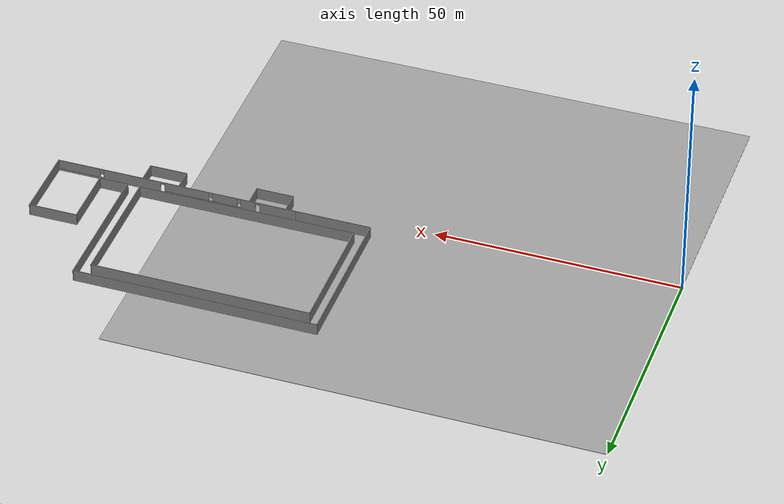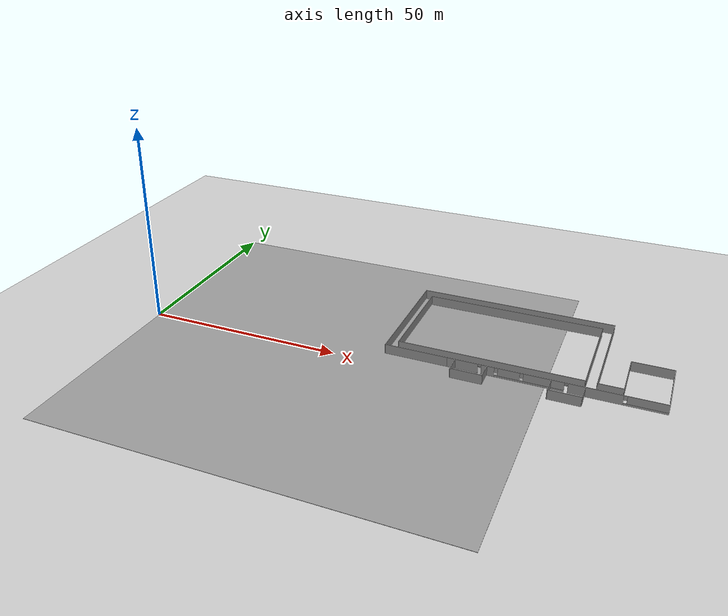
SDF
<sdf version="1.6">
 <world name="default">
  <model name="ground_plane">
   <static>1</static>
   <link name="link">
    <collision name="collision">
     <geometry><plane><normal>0 0 1</normal><size>100 100</size></plane></geometry>
     <surface>
      <contact><collide_bitmask>65535</collide_bitmask></contact>
      <friction><ode><mu>100</mu><mu2>50</mu2></ode></friction>
     </surface>
    </collision>
    <visual name="visual">
     <cast_shadows>0</cast_shadows>
     <geometry><plane><normal>0 0 1</normal><size>100 100</size></plane></geometry>
     <material>
      <script><uri>file://media/materials/scripts/gazebo.material</uri><name>Gazebo/Grey</name></script>
     </material>
    </visual>
   </link>
  </model>
  <model name="ground_plane_0">
   <static>1</static>
   <link name="link">
    <collision name="collision">
     <geometry><plane><normal>0 0 1</normal><size>100 100</size></plane></geometry>
     <surface>
      <contact><collide_bitmask>65535</collide_bitmask></contact>
      <friction><ode><mu>100</mu><mu2>50</mu2></ode></friction>
     </surface>
    </collision>
    <visual name="visual">
     <cast_shadows>0</cast_shadows>
     <geometry><plane><normal>0 0 1</normal><size>100 100</size></plane></geometry>
     <material>
      <script><uri>file://media/materials/scripts/gazebo.material</uri><name>Gazebo/Grey</name></script>
     </material>
    </visual>
   </link>
   <pose>50.0335 0.140293 0 0 -0 0</pose>
  </model>
  <model name="my_worlds_clone_1">
   <link name="myworld::myworld::Wall_0">
    <pose>7.725 -15.35 0 0 -0 0</pose>
    <visual name="Wall_0_Visual_6">
     <pose>-2.17588 0 1.5 0 -0 0</pose>
     <geometry><box><size>9.2769 0.15 2</size></box></geometry>
     <material>
      <script><uri>file://media/materials/scripts/gazebo.material</uri><name>Gazebo/Grey</name></script>
      <ambient>1 1 1 1</ambient>
      <shader type="pixel"/>
     </material>
     <meta><layer>0</layer></meta>
    </visual>
    <visual name="Wall_0_Visual_0">
     <pose>-21.2249 0 1.25 0 -0 0</pose>
     <geometry><box><size>7.55013 0.15 2.5</size></box></geometry>
     <material>
      <script><uri>file://media/materials/scripts/gazebo.material</uri><name>Gazebo/Grey</name></script>
      <ambient>1 1 1 1</ambient>
      <shader type="pixel"/>
     </material>
     <meta><layer>0</layer></meta>
    </visual>
    <visual name="Wall_0_Visual_14">
     <pose>2.86257 0 2.25 0 -0 0</pose>
     <geometry><box><size>0.8 0.15 0.5</size></box></geometry>
     <material>
      <script><uri>file://media/materials/scripts/gazebo.material</uri><name>Gazebo/Grey</name></script>
      <ambient>1 1 1 1</ambient>
      <shader type="pixel"/>
     </material>
     <meta><layer>0</layer></meta>
    </visual>
    <visual name="Wall_0_Visual_8">
     <pose>20.5547 0 1.5 0 -0 0</pose>
     <geometry><box><size>8.89059 0.15 2</size></box></geometry>
     <material>
      <script><uri>file://media/materials/scripts/gazebo.material</uri><name>Gazebo/Grey</name></script>
      <ambient>1 1 1 1</ambient>
      <shader type="pixel"/>
     </material>
     <meta><layer>0</layer></meta>
    </visual>
    <visual name="Wall_0_Visual_2">
     <pose>9.28599 0 1.25 0 -0 0</pose>
     <geometry><box><size>12.0468 0.15 2.5</size></box></geometry>
     <material>
      <script><uri>file://media/materials/scripts/gazebo.material</uri><name>Gazebo/Grey</name></script>
      <ambient>1 1 1 1</ambient>
      <shader type="pixel"/>
     </material>
     <meta><layer>0</layer></meta>
    </visual>
    <visual name="Wall_0_Visual_1">
     <pose>-15.1089 0 1.25 0 -0 0</pose>
     <geometry><box><size>3.08192 0.15 2.5</size></box></geometry>
     <material>
      <script><uri>file://media/materials/scripts/gazebo.material</uri><name>Gazebo/Grey</name></script>
      <ambient>1 1 1 1</ambient>
      <shader type="pixel"/>
     </material>
     <meta><layer>0</layer></meta>
    </visual>
    <visual name="Wall_0_Visual_3">
     <pose>-5.55269 0 0.25 0 -0 0</pose>
     <geometry><box><size>16.0305 0.15 0.5</size></box></geometry>
     <material>
      <script><uri>file://media/materials/scripts/gazebo.material</uri><name>Gazebo/Grey</name></script>
      <ambient>1 1 1 1</ambient>
      <shader type="pixel"/>
     </material>
     <meta><layer>0</layer></meta>
    </visual>
    <visual name="Wall_0_Visual_5">
     <pose>-10.1911 0 1.5 0 -0 0</pose>
     <geometry><box><size>5.15362 0.15 2</size></box></geometry>
     <material>
      <script><uri>file://media/materials/scripts/gazebo.material</uri><name>Gazebo/Grey</name></script>
      <ambient>1 1 1 1</ambient>
      <shader type="pixel"/>
     </material>
     <meta><layer>0</layer></meta>
    </visual>
    <visual name="Wall_0_Visual_13">
     <pose>2.86257 0 2.25 0 -0 0</pose>
     <geometry><box><size>0.8 0.15 0.5</size></box></geometry>
     <material>
      <script><uri>file://media/materials/scripts/gazebo.material</uri><name>Gazebo/Grey</name></script>
      <ambient>1 1 1 1</ambient>
      <shader type="pixel"/>
     </material>
     <meta><layer>0</layer></meta>
    </visual>
    <visual name="Wall_0_Visual_4">
     <pose>20.1547 0 0.25 0 -0 0</pose>
     <geometry><box><size>9.69059 0.15 0.5</size></box></geometry>
     <material>
      <script><uri>file://media/materials/scripts/gazebo.material</uri><name>Gazebo/Grey</name></script>
      <ambient>1 1 1 1</ambient>
      <shader type="pixel"/>
     </material>
     <meta><layer>0</layer></meta>
    </visual>
    <visual name="Wall_0_Visual_9">
     <pose>-13.1679 0 1.9 0 -0 0</pose>
     <geometry><box><size>0.8 0.15 1.2</size></box></geometry>
     <material>
      <script><uri>file://media/materials/scripts/gazebo.material</uri><name>Gazebo/Grey</name></script>
      <ambient>1 1 1 1</ambient>
      <shader type="pixel"/>
     </material>
     <meta><layer>0</layer></meta>
    </visual>
    <visual name="Wall_0_Visual_10">
     <pose>15.7094 0 1.9 0 -0 0</pose>
     <geometry><box><size>0.8 0.15 1.2</size></box></geometry>
     <material>
      <script><uri>file://media/materials/scripts/gazebo.material</uri><name>Gazebo/Grey</name></script>
      <ambient>1 1 1 1</ambient>
      <shader type="pixel"/>
     </material>
     <meta><layer>0</layer></meta>
    </visual>
    <visual name="Wall_0_Visual_11">
     <pose>-7.21433 0 1.9 0 -0 0</pose>
     <geometry><box><size>0.8 0.15 1.2</size></box></geometry>
     <material>
      <script><uri>file://media/materials/scripts/gazebo.material</uri><name>Gazebo/Grey</name></script>
      <ambient>1 1 1 1</ambient>
      <shader type="pixel"/>
     </material>
     <meta><layer>0</layer></meta>
    </visual>
    <visual name="Wall_0_Visual_12">
     <pose>-17.0499 0 2.25 0 -0 0</pose>
     <geometry><box><size>0.8 0.15 0.5</size></box></geometry>
     <material>
      <script><uri>file://media/materials/scripts/gazebo.material</uri><name>Gazebo/Grey</name></script>
      <ambient>1 1 1 1</ambient>
      <shader type="pixel"/>
     </material>
     <meta><layer>0</layer></meta>
    </visual>
    <visual name="Wall_0_Visual_7">
     <pose>-2.17588 0 1.5 0 -0 0</pose>
     <geometry><box><size>9.2769 0.15 2</size></box></geometry>
     <material>
      <script><uri>file://media/materials/scripts/gazebo.material</uri><name>Gazebo/Grey</name></script>
      <ambient>1 1 1 1</ambient>
      <shader type="pixel"/>
     </material>
     <meta><layer>0</layer></meta>
    </visual>
    <collision name="Wall_0_Collision_7">
     <pose>-2.17588 0 1.5 0 -0 0</pose>
     <geometry><box><size>9.2769 0.15 2</size></box></geometry>
     <surface>
      <friction>
       <ode><mu>1</mu><mu2>1</mu2><fdir1>0 0 0</fdir1><slip1>0</slip1><slip2>0</slip2></ode>
       <torsional>
        <coefficient>1</coefficient>
        <patch_radius>0</patch_radius>
        <surface_radius>0</surface_radius>
        <use_patch_radius>1</use_patch_radius>
        <ode><slip>0</slip></ode>
       </torsional>
      </friction>
      <bounce><restitution_coefficient>0</restitution_coefficient><threshold>1e+06</threshold></bounce>
      <contact>
       <collide_without_contact>0</collide_without_contact>
       <collide_without_contact_bitmask>1</collide_without_contact_bitmask>
       <collide_bitmask>1</collide_bitmask>
       <ode>
        <soft_cfm>0</soft_cfm>
        <soft_erp>0.2</soft_erp>
        <kp>1e+13</kp>
        <kd>1</kd>
        <max_vel>0.01</max_vel>
        <min_depth>0</min_depth>
       </ode>
       <bullet>
        <split_impulse>1</split_impulse>
        <split_impulse_penetration_threshold>-0.01</split_impulse_penetration_threshold>
        <soft_cfm>0</soft_cfm>
        <soft_erp>0.2</soft_erp>
        <kp>1e+13</kp>
        <kd>1</kd>
       </bullet>
      </contact>
     </surface>
    </collision>
    <collision name="Wall_0_Collision_13">
     <pose>2.86257 0 2.25 0 -0 0</pose>
     <geometry><box><size>0.8 0.15 0.5</size></box></geometry>
     <surface>
      <friction>
       <ode><mu>1</mu><mu2>1</mu2><fdir1>0 0 0</fdir1><slip1>0</slip1><slip2>0</slip2></ode>
       <torsional>
        <coefficient>1</coefficient>
        <patch_radius>0</patch_radius>
        <surface_radius>0</surface_radius>
        <use_patch_radius>1</use_patch_radius>
        <ode><slip>0</slip></ode>
       </torsional>
      </friction>
      <bounce><restitution_coefficient>0</restitution_coefficient><threshold>1e+06</threshold></bounce>
      <contact>
       <collide_without_contact>0</collide_without_contact>
       <collide_without_contact_bitmask>1</collide_without_contact_bitmask>
       <collide_bitmask>1</collide_bitmask>
       <ode>
        <soft_cfm>0</soft_cfm>
        <soft_erp>0.2</soft_erp>
        <kp>1e+13</kp>
        <kd>1</kd>
        <max_vel>0.01</max_vel>
        <min_depth>0</min_depth>
       </ode>
       <bullet>
        <split_impulse>1</split_impulse>
        <split_impulse_penetration_threshold>-0.01</split_impulse_penetration_threshold>
        <soft_cfm>0</soft_cfm>
        <soft_erp>0.2</soft_erp>
        <kp>1e+13</kp>
        <kd>1</kd>
       </bullet>
      </contact>
     </surface>
    </collision>
    <collision name="Wall_0_Collision_1">
     <pose>-15.1089 0 1.25 0 -0 0</pose>
     <geometry><box><size>3.08192 0.15 2.5</size></box></geometry>
     <surface>
      <friction>
       <ode><mu>1</mu><mu2>1</mu2><fdir1>0 0 0</fdir1><slip1>0</slip1><slip2>0</slip2></ode>
       <torsional>
        <coefficient>1</coefficient>
        <patch_radius>0</patch_radius>
        <surface_radius>0</surface_radius>
        <use_patch_radius>1</use_patch_radius>
        <ode><slip>0</slip></ode>
       </torsional>
      </friction>
      <bounce><restitution_coefficient>0</restitution_coefficient><threshold>1e+06</threshold></bounce>
      <contact>
       <collide_without_contact>0</collide_without_contact>
       <collide_without_contact_bitmask>1</collide_without_contact_bitmask>
       <collide_bitmask>1</collide_bitmask>
       <ode>
        <soft_cfm>0</soft_cfm>
        <soft_erp>0.2</soft_erp>
        <kp>1e+13</kp>
        <kd>1</kd>
        <max_vel>0.01</max_vel>
        <min_depth>0</min_depth>
       </ode>
       <bullet>
        <split_impulse>1</split_impulse>
        <split_impulse_penetration_threshold>-0.01</split_impulse_penetration_threshold>
        <soft_cfm>0</soft_cfm>
        <soft_erp>0.2</soft_erp>
        <kp>1e+13</kp>
        <kd>1</kd>
       </bullet>
      </contact>
     </surface>
    </collision>
    <collision name="Wall_0_Collision_11">
     <pose>-7.21433 0 1.9 0 -0 0</pose>
     <geometry><box><size>0.8 0.15 1.2</size></box></geometry>
     <surface>
      <friction>
       <ode><mu>1</mu><mu2>1</mu2><fdir1>0 0 0</fdir1><slip1>0</slip1><slip2>0</slip2></ode>
       <torsional>
        <coefficient>1</coefficient>
        <patch_radius>0</patch_radius>
        <surface_radius>0</surface_radius>
        <use_patch_radius>1</use_patch_radius>
        <ode><slip>0</slip></ode>
       </torsional>
      </friction>
      <bounce><restitution_coefficient>0</restitution_coefficient><threshold>1e+06</threshold></bounce>
      <contact>
       <collide_without_contact>0</collide_without_contact>
       <collide_without_contact_bitmask>1</collide_without_contact_bitmask>
       <collide_bitmask>1</collide_bitmask>
       <ode>
        <soft_cfm>0</soft_cfm>
        <soft_erp>0.2</soft_erp>
        <kp>1e+13</kp>
        <kd>1</kd>
        <max_vel>0.01</max_vel>
        <min_depth>0</min_depth>
       </ode>
       <bullet>
        <split_impulse>1</split_impulse>
        <split_impulse_penetration_threshold>-0.01</split_impulse_penetration_threshold>
        <soft_cfm>0</soft_cfm>
        <soft_erp>0.2</soft_erp>
        <kp>1e+13</kp>
        <kd>1</kd>
       </bullet>
      </contact>
     </surface>
    </collision>
    <collision name="Wall_0_Collision_14">
     <pose>2.86257 0 2.25 0 -0 0</pose>
     <geometry><box><size>0.8 0.15 0.5</size></box></geometry>
     <surface>
      <friction>
       <ode><mu>1</mu><mu2>1</mu2><fdir1>0 0 0</fdir1><slip1>0</slip1><slip2>0</slip2></ode>
       <torsional>
        <coefficient>1</coefficient>
        <patch_radius>0</patch_radius>
        <surface_radius>0</surface_radius>
        <use_patch_radius>1</use_patch_radius>
        <ode><slip>0</slip></ode>
       </torsional>
      </friction>
      <bounce><restitution_coefficient>0</restitution_coefficient><threshold>1e+06</threshold></bounce>
      <contact>
       <collide_without_contact>0</collide_without_contact>
       <collide_without_contact_bitmask>1</collide_without_contact_bitmask>
       <collide_bitmask>1</collide_bitmask>
       <ode>
        <soft_cfm>0</soft_cfm>
        <soft_erp>0.2</soft_erp>
        <kp>1e+13</kp>
        <kd>1</kd>
        <max_vel>0.01</max_vel>
        <min_depth>0</min_depth>
       </ode>
       <bullet>
        <split_impulse>1</split_impulse>
        <split_impulse_penetration_threshold>-0.01</split_impulse_penetration_threshold>
        <soft_cfm>0</soft_cfm>
        <soft_erp>0.2</soft_erp>
        <kp>1e+13</kp>
        <kd>1</kd>
       </bullet>
      </contact>
     </surface>
    </collision>
    <collision name="Wall_0_Collision_3">
     <pose>-5.55269 0 0.25 0 -0 0</pose>
     <geometry><box><size>16.0305 0.15 0.5</size></box></geometry>
     <surface>
      <friction>
       <ode><mu>1</mu><mu2>1</mu2><fdir1>0 0 0</fdir1><slip1>0</slip1><slip2>0</slip2></ode>
       <torsional>
        <coefficient>1</coefficient>
        <patch_radius>0</patch_radius>
        <surface_radius>0</surface_radius>
        <use_patch_radius>1</use_patch_radius>
        <ode><slip>0</slip></ode>
       </torsional>
      </friction>
      <bounce><restitution_coefficient>0</restitution_coefficient><threshold>1e+06</threshold></bounce>
      <contact>
       <collide_without_contact>0</collide_without_contact>
       <collide_without_contact_bitmask>1</collide_without_contact_bitmask>
       <collide_bitmask>1</collide_bitmask>
       <ode>
        <soft_cfm>0</soft_cfm>
        <soft_erp>0.2</soft_erp>
        <kp>1e+13</kp>
        <kd>1</kd>
        <max_vel>0.01</max_vel>
        <min_depth>0</min_depth>
       </ode>
       <bullet>
        <split_impulse>1</split_impulse>
        <split_impulse_penetration_threshold>-0.01</split_impulse_penetration_threshold>
        <soft_cfm>0</soft_cfm>
        <soft_erp>0.2</soft_erp>
        <kp>1e+13</kp>
        <kd>1</kd>
       </bullet>
      </contact>
     </surface>
    </collision>
    <collision name="Wall_0_Collision_5">
     <pose>-10.1911 0 1.5 0 -0 0</pose>
     <geometry><box><size>5.15362 0.15 2</size></box></geometry>
     <surface>
      <friction>
       <ode><mu>1</mu><mu2>1</mu2><fdir1>0 0 0</fdir1><slip1>0</slip1><slip2>0</slip2></ode>
       <torsional>
        <coefficient>1</coefficient>
        <patch_radius>0</patch_radius>
        <surface_radius>0</surface_radius>
        <use_patch_radius>1</use_patch_radius>
        <ode><slip>0</slip></ode>
       </torsional>
      </friction>
      <bounce><restitution_coefficient>0</restitution_coefficient><threshold>1e+06</threshold></bounce>
      <contact>
       <collide_without_contact>0</collide_without_contact>
       <collide_without_contact_bitmask>1</collide_without_contact_bitmask>
       <collide_bitmask>1</collide_bitmask>
       <ode>
        <soft_cfm>0</soft_cfm>
        <soft_erp>0.2</soft_erp>
        <kp>1e+13</kp>
        <kd>1</kd>
        <max_vel>0.01</max_vel>
        <min_depth>0</min_depth>
       </ode>
       <bullet>
        <split_impulse>1</split_impulse>
        <split_impulse_penetration_threshold>-0.01</split_impulse_penetration_threshold>
        <soft_cfm>0</soft_cfm>
        <soft_erp>0.2</soft_erp>
        <kp>1e+13</kp>
        <kd>1</kd>
       </bullet>
      </contact>
     </surface>
    </collision>
    <collision name="Wall_0_Collision_2">
     <pose>9.28599 0 1.25 0 -0 0</pose>
     <geometry><box><size>12.0468 0.15 2.5</size></box></geometry>
     <surface>
      <friction>
       <ode><mu>1</mu><mu2>1</mu2><fdir1>0 0 0</fdir1><slip1>0</slip1><slip2>0</slip2></ode>
       <torsional>
        <coefficient>1</coefficient>
        <patch_radius>0</patch_radius>
        <surface_radius>0</surface_radius>
        <use_patch_radius>1</use_patch_radius>
        <ode><slip>0</slip></ode>
       </torsional>
      </friction>
      <bounce><restitution_coefficient>0</restitution_coefficient><threshold>1e+06</threshold></bounce>
      <contact>
       <collide_without_contact>0</collide_without_contact>
       <collide_without_contact_bitmask>1</collide_without_contact_bitmask>
       <collide_bitmask>1</collide_bitmask>
       <ode>
        <soft_cfm>0</soft_cfm>
        <soft_erp>0.2</soft_erp>
        <kp>1e+13</kp>
        <kd>1</kd>
        <max_vel>0.01</max_vel>
        <min_depth>0</min_depth>
       </ode>
       <bullet>
        <split_impulse>1</split_impulse>
        <split_impulse_penetration_threshold>-0.01</split_impulse_penetration_threshold>
        <soft_cfm>0</soft_cfm>
        <soft_erp>0.2</soft_erp>
        <kp>1e+13</kp>
        <kd>1</kd>
       </bullet>
      </contact>
     </surface>
    </collision>
    <collision name="Wall_0_Collision_6">
     <pose>-2.17588 0 1.5 0 -0 0</pose>
     <geometry><box><size>9.2769 0.15 2</size></box></geometry>
     <surface>
      <friction>
       <ode><mu>1</mu><mu2>1</mu2><fdir1>0 0 0</fdir1><slip1>0</slip1><slip2>0</slip2></ode>
       <torsional>
        <coefficient>1</coefficient>
        <patch_radius>0</patch_radius>
        <surface_radius>0</surface_radius>
        <use_patch_radius>1</use_patch_radius>
        <ode><slip>0</slip></ode>
       </torsional>
      </friction>
      <bounce><restitution_coefficient>0</restitution_coefficient><threshold>1e+06</threshold></bounce>
      <contact>
       <collide_without_contact>0</collide_without_contact>
       <collide_without_contact_bitmask>1</collide_without_contact_bitmask>
       <collide_bitmask>1</collide_bitmask>
       <ode>
        <soft_cfm>0</soft_cfm>
        <soft_erp>0.2</soft_erp>
        <kp>1e+13</kp>
        <kd>1</kd>
        <max_vel>0.01</max_vel>
        <min_depth>0</min_depth>
       </ode>
       <bullet>
        <split_impulse>1</split_impulse>
        <split_impulse_penetration_threshold>-0.01</split_impulse_penetration_threshold>
        <soft_cfm>0</soft_cfm>
        <soft_erp>0.2</soft_erp>
        <kp>1e+13</kp>
        <kd>1</kd>
       </bullet>
      </contact>
     </surface>
    </collision>
    <collision name="Wall_0_Collision_12">
     <pose>-17.0499 0 2.25 0 -0 0</pose>
     <geometry><box><size>0.8 0.15 0.5</size></box></geometry>
     <surface>
      <friction>
       <ode><mu>1</mu><mu2>1</mu2><fdir1>0 0 0</fdir1><slip1>0</slip1><slip2>0</slip2></ode>
       <torsional>
        <coefficient>1</coefficient>
        <patch_radius>0</patch_radius>
        <surface_radius>0</surface_radius>
        <use_patch_radius>1</use_patch_radius>
        <ode><slip>0</slip></ode>
       </torsional>
      </friction>
      <bounce><restitution_coefficient>0</restitution_coefficient><threshold>1e+06</threshold></bounce>
      <contact>
       <collide_without_contact>0</collide_without_contact>
       <collide_without_contact_bitmask>1</collide_without_contact_bitmask>
       <collide_bitmask>1</collide_bitmask>
       <ode>
        <soft_cfm>0</soft_cfm>
        <soft_erp>0.2</soft_erp>
        <kp>1e+13</kp>
        <kd>1</kd>
        <max_vel>0.01</max_vel>
        <min_depth>0</min_depth>
       </ode>
       <bullet>
        <split_impulse>1</split_impulse>
        <split_impulse_penetration_threshold>-0.01</split_impulse_penetration_threshold>
        <soft_cfm>0</soft_cfm>
        <soft_erp>0.2</soft_erp>
        <kp>1e+13</kp>
        <kd>1</kd>
       </bullet>
      </contact>
     </surface>
    </collision>
    <collision name="Wall_0_Collision_0">
     <pose>-21.2249 0 1.25 0 -0 0</pose>
     <geometry><box><size>7.55013 0.15 2.5</size></box></geometry>
     <surface>
      <friction>
       <ode><mu>1</mu><mu2>1</mu2><fdir1>0 0 0</fdir1><slip1>0</slip1><slip2>0</slip2></ode>
       <torsional>
        <coefficient>1</coefficient>
        <patch_radius>0</patch_radius>
        <surface_radius>0</surface_radius>
        <use_patch_radius>1</use_patch_radius>
        <ode><slip>0</slip></ode>
       </torsional>
      </friction>
      <bounce><restitution_coefficient>0</restitution_coefficient><threshold>1e+06</threshold></bounce>
      <contact>
       <collide_without_contact>0</collide_without_contact>
       <collide_without_contact_bitmask>1</collide_without_contact_bitmask>
       <collide_bitmask>1</collide_bitmask>
       <ode>
        <soft_cfm>0</soft_cfm>
        <soft_erp>0.2</soft_erp>
        <kp>1e+13</kp>
        <kd>1</kd>
        <max_vel>0.01</max_vel>
        <min_depth>0</min_depth>
       </ode>
       <bullet>
        <split_impulse>1</split_impulse>
        <split_impulse_penetration_threshold>-0.01</split_impulse_penetration_threshold>
        <soft_cfm>0</soft_cfm>
        <soft_erp>0.2</soft_erp>
        <kp>1e+13</kp>
        <kd>1</kd>
       </bullet>
      </contact>
     </surface>
    </collision>
    <collision name="Wall_0_Collision_8">
     <pose>20.5547 0 1.5 0 -0 0</pose>
     <geometry><box><size>8.89059 0.15 2</size></box></geometry>
     <surface>
      <friction>
       <ode><mu>1</mu><mu2>1</mu2><fdir1>0 0 0</fdir1><slip1>0</slip1><slip2>0</slip2></ode>
       <torsional>
        <coefficient>1</coefficient>
        <patch_radius>0</patch_radius>
        <surface_radius>0</surface_radius>
        <use_patch_radius>1</use_patch_radius>
        <ode><slip>0</slip></ode>
       </torsional>
      </friction>
      <bounce><restitution_coefficient>0</restitution_coefficient><threshold>1e+06</threshold></bounce>
      <contact>
       <collide_without_contact>0</collide_without_contact>
       <collide_without_contact_bitmask>1</collide_without_contact_bitmask>
       <collide_bitmask>1</collide_bitmask>
       <ode>
        <soft_cfm>0</soft_cfm>
        <soft_erp>0.2</soft_erp>
        <kp>1e+13</kp>
        <kd>1</kd>
        <max_vel>0.01</max_vel>
        <min_depth>0</min_depth>
       </ode>
       <bullet>
        <split_impulse>1</split_impulse>
        <split_impulse_penetration_threshold>-0.01</split_impulse_penetration_threshold>
        <soft_cfm>0</soft_cfm>
        <soft_erp>0.2</soft_erp>
        <kp>1e+13</kp>
        <kd>1</kd>
       </bullet>
      </contact>
     </surface>
    </collision>
    <collision name="Wall_0_Collision_4">
     <pose>20.1547 0 0.25 0 -0 0</pose>
     <geometry><box><size>9.69059 0.15 0.5</size></box></geometry>
     <surface>
      <friction>
       <ode><mu>1</mu><mu2>1</mu2><fdir1>0 0 0</fdir1><slip1>0</slip1><slip2>0</slip2></ode>
       <torsional>
        <coefficient>1</coefficient>
        <patch_radius>0</patch_radius>
        <surface_radius>0</surface_radius>
        <use_patch_radius>1</use_patch_radius>
        <ode><slip>0</slip></ode>
       </torsional>
      </friction>
      <bounce><restitution_coefficient>0</restitution_coefficient><threshold>1e+06</threshold></bounce>
      <contact>
       <collide_without_contact>0</collide_without_contact>
       <collide_without_contact_bitmask>1</collide_without_contact_bitmask>
       <collide_bitmask>1</collide_bitmask>
       <ode>
        <soft_cfm>0</soft_cfm>
        <soft_erp>0.2</soft_erp>
        <kp>1e+13</kp>
        <kd>1</kd>
        <max_vel>0.01</max_vel>
        <min_depth>0</min_depth>
       </ode>
       <bullet>
        <split_impulse>1</split_impulse>
        <split_impulse_penetration_threshold>-0.01</split_impulse_penetration_threshold>
        <soft_cfm>0</soft_cfm>
        <soft_erp>0.2</soft_erp>
        <kp>1e+13</kp>
        <kd>1</kd>
       </bullet>
      </contact>
     </surface>
    </collision>
    <collision name="Wall_0_Collision_10">
     <pose>15.7094 0 1.9 0 -0 0</pose>
     <geometry><box><size>0.8 0.15 1.2</size></box></geometry>
     <surface>
      <friction>
       <ode><mu>1</mu><mu2>1</mu2><fdir1>0 0 0</fdir1><slip1>0</slip1><slip2>0</slip2></ode>
       <torsional>
        <coefficient>1</coefficient>
        <patch_radius>0</patch_radius>
        <surface_radius>0</surface_radius>
        <use_patch_radius>1</use_patch_radius>
        <ode><slip>0</slip></ode>
       </torsional>
      </friction>
      <bounce><restitution_coefficient>0</restitution_coefficient><threshold>1e+06</threshold></bounce>
      <contact>
       <collide_without_contact>0</collide_without_contact>
       <collide_without_contact_bitmask>1</collide_without_contact_bitmask>
       <collide_bitmask>1</collide_bitmask>
       <ode>
        <soft_cfm>0</soft_cfm>
        <soft_erp>0.2</soft_erp>
        <kp>1e+13</kp>
        <kd>1</kd>
        <max_vel>0.01</max_vel>
        <min_depth>0</min_depth>
       </ode>
       <bullet>
        <split_impulse>1</split_impulse>
        <split_impulse_penetration_threshold>-0.01</split_impulse_penetration_threshold>
        <soft_cfm>0</soft_cfm>
        <soft_erp>0.2</soft_erp>
        <kp>1e+13</kp>
        <kd>1</kd>
       </bullet>
      </contact>
     </surface>
    </collision>
    <collision name="Wall_0_Collision_9">
     <pose>-13.1679 0 1.9 0 -0 0</pose>
     <geometry><box><size>0.8 0.15 1.2</size></box></geometry>
     <surface>
      <friction>
       <ode><mu>1</mu><mu2>1</mu2><fdir1>0 0 0</fdir1><slip1>0</slip1><slip2>0</slip2></ode>
       <torsional>
        <coefficient>1</coefficient>
        <patch_radius>0</patch_radius>
        <surface_radius>0</surface_radius>
        <use_patch_radius>1</use_patch_radius>
        <ode><slip>0</slip></ode>
       </torsional>
      </friction>
      <bounce><restitution_coefficient>0</restitution_coefficient><threshold>1e+06</threshold></bounce>
      <contact>
       <collide_without_contact>0</collide_without_contact>
       <collide_without_contact_bitmask>1</collide_without_contact_bitmask>
       <collide_bitmask>1</collide_bitmask>
       <ode>
        <soft_cfm>0</soft_cfm>
        <soft_erp>0.2</soft_erp>
        <kp>1e+13</kp>
        <kd>1</kd>
        <max_vel>0.01</max_vel>
        <min_depth>0</min_depth>
       </ode>
       <bullet>
        <split_impulse>1</split_impulse>
        <split_impulse_penetration_threshold>-0.01</split_impulse_penetration_threshold>
        <soft_cfm>0</soft_cfm>
        <soft_erp>0.2</soft_erp>
        <kp>1e+13</kp>
        <kd>1</kd>
       </bullet>
      </contact>
     </surface>
    </collision>
   </link>
   <link name="myworld::myworld::Wall_11">
    <pose>19.875 -12.75 0 0 -0 3.14159</pose>
    <visual name="Wall_11_Visual">
     <pose>0 0 1.25 0 -0 0</pose>
     <geometry><box><size>6 0.15 2.5</size></box></geometry>
     <material>
      <script><uri>file://media/materials/scripts/gazebo.material</uri><name>Gazebo/Grey</name></script>
      <ambient>1 1 1 1</ambient>
      <shader type="pixel"/>
     </material>
     <meta><layer>0</layer></meta>
    </visual>
    <collision name="Wall_11_Collision">
     <pose>0 0 1.25 0 -0 0</pose>
     <geometry><box><size>6 0.15 2.5</size></box></geometry>
     <surface>
      <friction>
       <ode><mu>1</mu><mu2>1</mu2><fdir1>0 0 0</fdir1><slip1>0</slip1><slip2>0</slip2></ode>
       <torsional>
        <coefficient>1</coefficient>
        <patch_radius>0</patch_radius>
        <surface_radius>0</surface_radius>
        <use_patch_radius>1</use_patch_radius>
        <ode><slip>0</slip></ode>
       </torsional>
      </friction>
      <bounce><restitution_coefficient>0</restitution_coefficient><threshold>1e+06</threshold></bounce>
      <contact>
       <collide_without_contact>0</collide_without_contact>
       <collide_without_contact_bitmask>1</collide_without_contact_bitmask>
       <collide_bitmask>1</collide_bitmask>
       <ode>
        <soft_cfm>0</soft_cfm>
        <soft_erp>0.2</soft_erp>
        <kp>1e+13</kp>
        <kd>1</kd>
        <max_vel>0.01</max_vel>
        <min_depth>0</min_depth>
       </ode>
       <bullet>
        <split_impulse>1</split_impulse>
        <split_impulse_penetration_threshold>-0.01</split_impulse_penetration_threshold>
        <soft_cfm>0</soft_cfm>
        <soft_erp>0.2</soft_erp>
        <kp>1e+13</kp>
        <kd>1</kd>
       </bullet>
      </contact>
     </surface>
    </collision>
   </link>
   <link name="myworld::myworld::Wall_12">
    <pose>16.95 1.3 0 0 -0 1.5708</pose>
    <visual name="Wall_12_Visual">
     <pose>0 0 1.25 0 -0 0</pose>
     <geometry><box><size>28.25 0.15 2.5</size></box></geometry>
     <material>
      <script><uri>file://media/materials/scripts/gazebo.material</uri><name>Gazebo/Grey</name></script>
      <ambient>1 1 1 1</ambient>
      <shader type="pixel"/>
     </material>
     <meta><layer>0</layer></meta>
    </visual>
    <collision name="Wall_12_Collision">
     <pose>0 0 1.25 0 -0 0</pose>
     <geometry><box><size>28.25 0.15 2.5</size></box></geometry>
     <surface>
      <friction>
       <ode><mu>1</mu><mu2>1</mu2><fdir1>0 0 0</fdir1><slip1>0</slip1><slip2>0</slip2></ode>
       <torsional>
        <coefficient>1</coefficient>
        <patch_radius>0</patch_radius>
        <surface_radius>0</surface_radius>
        <use_patch_radius>1</use_patch_radius>
        <ode><slip>0</slip></ode>
       </torsional>
      </friction>
      <bounce><restitution_coefficient>0</restitution_coefficient><threshold>1e+06</threshold></bounce>
      <contact>
       <collide_without_contact>0</collide_without_contact>
       <collide_without_contact_bitmask>1</collide_without_contact_bitmask>
       <collide_bitmask>1</collide_bitmask>
       <ode>
        <soft_cfm>0</soft_cfm>
        <soft_erp>0.2</soft_erp>
        <kp>1e+13</kp>
        <kd>1</kd>
        <max_vel>0.01</max_vel>
        <min_depth>0</min_depth>
       </ode>
       <bullet>
        <split_impulse>1</split_impulse>
        <split_impulse_penetration_threshold>-0.01</split_impulse_penetration_threshold>
        <soft_cfm>0</soft_cfm>
        <soft_erp>0.2</soft_erp>
        <kp>1e+13</kp>
        <kd>1</kd>
       </bullet>
      </contact>
     </surface>
    </collision>
   </link>
   <link name="myworld::myworld::Wall_13">
    <pose>-7.85 15.35 0 0 -0 3.14159</pose>
    <visual name="Wall_13_Visual">
     <pose>0 0 1.25 0 -0 0</pose>
     <geometry><box><size>49.75 0.15 2.5</size></box></geometry>
     <material>
      <script><uri>file://media/materials/scripts/gazebo.material</uri><name>Gazebo/Grey</name></script>
      <ambient>1 1 1 1</ambient>
      <shader type="pixel"/>
     </material>
     <meta><layer>0</layer></meta>
    </visual>
    <collision name="Wall_13_Collision">
     <pose>0 0 1.25 0 -0 0</pose>
     <geometry><box><size>49.75 0.15 2.5</size></box></geometry>
     <surface>
      <friction>
       <ode><mu>1</mu><mu2>1</mu2><fdir1>0 0 0</fdir1><slip1>0</slip1><slip2>0</slip2></ode>
       <torsional>
        <coefficient>1</coefficient>
        <patch_radius>0</patch_radius>
        <surface_radius>0</surface_radius>
        <use_patch_radius>1</use_patch_radius>
        <ode><slip>0</slip></ode>
       </torsional>
      </friction>
      <bounce><restitution_coefficient>0</restitution_coefficient><threshold>1e+06</threshold></bounce>
      <contact>
       <collide_without_contact>0</collide_without_contact>
       <collide_without_contact_bitmask>1</collide_without_contact_bitmask>
       <collide_bitmask>1</collide_bitmask>
       <ode>
        <soft_cfm>0</soft_cfm>
        <soft_erp>0.2</soft_erp>
        <kp>1e+13</kp>
        <kd>1</kd>
        <max_vel>0.01</max_vel>
        <min_depth>0</min_depth>
       </ode>
       <bullet>
        <split_impulse>1</split_impulse>
        <split_impulse_penetration_threshold>-0.01</split_impulse_penetration_threshold>
        <soft_cfm>0</soft_cfm>
        <soft_erp>0.2</soft_erp>
        <kp>1e+13</kp>
        <kd>1</kd>
       </bullet>
      </contact>
     </surface>
    </collision>
   </link>
   <link name="myworld::myworld::Wall_14">
    <pose>-32.65 0.024999 0 0 0 -1.5708</pose>
    <visual name="Wall_14_Visual">
     <pose>0 0 1.25 0 -0 0</pose>
     <geometry><box><size>30.8 0.15 2.5</size></box></geometry>
     <material>
      <script><uri>file://media/materials/scripts/gazebo.material</uri><name>Gazebo/Grey</name></script>
      <ambient>1 1 1 1</ambient>
      <shader type="pixel"/>
     </material>
     <meta><layer>0</layer></meta>
    </visual>
    <collision name="Wall_14_Collision">
     <pose>0 0 1.25 0 -0 0</pose>
     <geometry><box><size>30.8 0.15 2.5</size></box></geometry>
     <surface>
      <friction>
       <ode><mu>1</mu><mu2>1</mu2><fdir1>0 0 0</fdir1><slip1>0</slip1><slip2>0</slip2></ode>
       <torsional>
        <coefficient>1</coefficient>
        <patch_radius>0</patch_radius>
        <surface_radius>0</surface_radius>
        <use_patch_radius>1</use_patch_radius>
        <ode><slip>0</slip></ode>
       </torsional>
      </friction>
      <bounce><restitution_coefficient>0</restitution_coefficient><threshold>1e+06</threshold></bounce>
      <contact>
       <collide_without_contact>0</collide_without_contact>
       <collide_without_contact_bitmask>1</collide_without_contact_bitmask>
       <collide_bitmask>1</collide_bitmask>
       <ode>
        <soft_cfm>0</soft_cfm>
        <soft_erp>0.2</soft_erp>
        <kp>1e+13</kp>
        <kd>1</kd>
        <max_vel>0.01</max_vel>
        <min_depth>0</min_depth>
       </ode>
       <bullet>
        <split_impulse>1</split_impulse>
        <split_impulse_penetration_threshold>-0.01</split_impulse_penetration_threshold>
        <soft_cfm>0</soft_cfm>
        <soft_erp>0.2</soft_erp>
        <kp>1e+13</kp>
        <kd>1</kd>
       </bullet>
      </contact>
     </surface>
    </collision>
   </link>
   <link name="myworld::myworld::Wall_16">
    <pose>-24.875 -15.35 0 0 -0 3.14159</pose>
    <visual name="Wall_16_Visual">
     <pose>0 0 1.25 0 -0 0</pose>
     <geometry><box><size>15.5 0.15 2.5</size></box></geometry>
     <material>
      <script><uri>file://media/materials/scripts/gazebo.material</uri><name>Gazebo/Grey</name></script>
      <ambient>1 1 1 1</ambient>
      <shader type="pixel"/>
     </material>
     <meta><layer>0</layer></meta>
    </visual>
    <collision name="Wall_16_Collision">
     <pose>0 0 1.25 0 -0 0</pose>
     <geometry><box><size>15.5 0.15 2.5</size></box></geometry>
     <surface>
      <friction>
       <ode><mu>1</mu><mu2>1</mu2><fdir1>0 0 0</fdir1><slip1>0</slip1><slip2>0</slip2></ode>
       <torsional>
        <coefficient>1</coefficient>
        <patch_radius>0</patch_radius>
        <surface_radius>0</surface_radius>
        <use_patch_radius>1</use_patch_radius>
        <ode><slip>0</slip></ode>
       </torsional>
      </friction>
      <bounce><restitution_coefficient>0</restitution_coefficient><threshold>1e+06</threshold></bounce>
      <contact>
       <collide_without_contact>0</collide_without_contact>
       <collide_without_contact_bitmask>1</collide_without_contact_bitmask>
       <collide_bitmask>1</collide_bitmask>
       <ode>
        <soft_cfm>0</soft_cfm>
        <soft_erp>0.2</soft_erp>
        <kp>1e+13</kp>
        <kd>1</kd>
        <max_vel>0.01</max_vel>
        <min_depth>0</min_depth>
       </ode>
       <bullet>
        <split_impulse>1</split_impulse>
        <split_impulse_penetration_threshold>-0.01</split_impulse_penetration_threshold>
        <soft_cfm>0</soft_cfm>
        <soft_erp>0.2</soft_erp>
        <kp>1e+13</kp>
        <kd>1</kd>
       </bullet>
      </contact>
     </surface>
    </collision>
   </link>
   <link name="myworld::myworld::Wall_2">
    <pose>32.65 -7.925 0 0 -0 1.5708</pose>
    <visual name="Wall_2_Visual">
     <pose>0 0 1.25 0 -0 0</pose>
     <geometry><box><size>15 0.15 2.5</size></box></geometry>
     <material>
      <script><uri>file://media/materials/scripts/gazebo.material</uri><name>Gazebo/Grey</name></script>
      <ambient>1 1 1 1</ambient>
      <shader type="pixel"/>
     </material>
     <meta><layer>0</layer></meta>
    </visual>
    <collision name="Wall_2_Collision">
     <pose>0 0 1.25 0 -0 0</pose>
     <geometry><box><size>15 0.15 2.5</size></box></geometry>
     <surface>
      <friction>
       <ode><mu>1</mu><mu2>1</mu2><fdir1>0 0 0</fdir1><slip1>0</slip1><slip2>0</slip2></ode>
       <torsional>
        <coefficient>1</coefficient>
        <patch_radius>0</patch_radius>
        <surface_radius>0</surface_radius>
        <use_patch_radius>1</use_patch_radius>
        <ode><slip>0</slip></ode>
       </torsional>
      </friction>
      <bounce><restitution_coefficient>0</restitution_coefficient><threshold>1e+06</threshold></bounce>
      <contact>
       <collide_without_contact>0</collide_without_contact>
       <collide_without_contact_bitmask>1</collide_without_contact_bitmask>
       <collide_bitmask>1</collide_bitmask>
       <ode>
        <soft_cfm>0</soft_cfm>
        <soft_erp>0.2</soft_erp>
        <kp>1e+13</kp>
        <kd>1</kd>
        <max_vel>0.01</max_vel>
        <min_depth>0</min_depth>
       </ode>
       <bullet>
        <split_impulse>1</split_impulse>
        <split_impulse_penetration_threshold>-0.01</split_impulse_penetration_threshold>
        <soft_cfm>0</soft_cfm>
        <soft_erp>0.2</soft_erp>
        <kp>1e+13</kp>
        <kd>1</kd>
       </bullet>
      </contact>
     </surface>
    </collision>
   </link>
   <link name="myworld::myworld::Wall_20">
    <pose>14.3513 -0.043041 0 0 -0 1.5708</pose>
    <visual name="Wall_20_Visual">
     <pose>0 0 1.25 0 -0 0</pose>
     <geometry><box><size>25.5 0.15 2.5</size></box></geometry>
     <material>
      <script><uri>file://media/materials/scripts/gazebo.material</uri><name>Gazebo/Grey</name></script>
      <ambient>1 1 1 1</ambient>
      <shader type="pixel"/>
     </material>
     <meta><layer>0</layer></meta>
    </visual>
    <collision name="Wall_20_Collision">
     <pose>0 0 1.25 0 -0 0</pose>
     <geometry><box><size>25.5 0.15 2.5</size></box></geometry>
     <surface>
      <friction>
       <ode><mu>1</mu><mu2>1</mu2><fdir1>0 0 0</fdir1><slip1>0</slip1><slip2>0</slip2></ode>
       <torsional>
        <coefficient>1</coefficient>
        <patch_radius>0</patch_radius>
        <surface_radius>0</surface_radius>
        <use_patch_radius>1</use_patch_radius>
        <ode><slip>0</slip></ode>
       </torsional>
      </friction>
      <bounce><restitution_coefficient>0</restitution_coefficient><threshold>1e+06</threshold></bounce>
      <contact>
       <collide_without_contact>0</collide_without_contact>
       <collide_without_contact_bitmask>1</collide_without_contact_bitmask>
       <collide_bitmask>1</collide_bitmask>
       <ode>
        <soft_cfm>0</soft_cfm>
        <soft_erp>0.2</soft_erp>
        <kp>1e+13</kp>
        <kd>1</kd>
        <max_vel>0.01</max_vel>
        <min_depth>0</min_depth>
       </ode>
       <bullet>
        <split_impulse>1</split_impulse>
        <split_impulse_penetration_threshold>-0.01</split_impulse_penetration_threshold>
        <soft_cfm>0</soft_cfm>
        <soft_erp>0.2</soft_erp>
        <kp>1e+13</kp>
        <kd>1</kd>
       </bullet>
      </contact>
     </surface>
    </collision>
   </link>
   <link name="myworld::myworld::Wall_29">
    <pose>-7.92367 12.632 0 0 -0 3.14159</pose>
    <visual name="Wall_29_Visual">
     <pose>0 0 1.25 0 -0 0</pose>
     <geometry><box><size>44.7 0.15 2.5</size></box></geometry>
     <material>
      <script><uri>file://media/materials/scripts/gazebo.material</uri><name>Gazebo/Grey</name></script>
      <ambient>1 1 1 1</ambient>
      <shader type="pixel"/>
     </material>
     <meta><layer>0</layer></meta>
    </visual>
    <collision name="Wall_29_Collision">
     <pose>0 0 1.25 0 -0 0</pose>
     <geometry><box><size>44.7 0.15 2.5</size></box></geometry>
     <surface>
      <friction>
       <ode><mu>1</mu><mu2>1</mu2><fdir1>0 0 0</fdir1><slip1>0</slip1><slip2>0</slip2></ode>
       <torsional>
        <coefficient>1</coefficient>
        <patch_radius>0</patch_radius>
        <surface_radius>0</surface_radius>
        <use_patch_radius>1</use_patch_radius>
        <ode><slip>0</slip></ode>
       </torsional>
      </friction>
      <bounce><restitution_coefficient>0</restitution_coefficient><threshold>1e+06</threshold></bounce>
      <contact>
       <collide_without_contact>0</collide_without_contact>
       <collide_without_contact_bitmask>1</collide_without_contact_bitmask>
       <collide_bitmask>1</collide_bitmask>
       <ode>
        <soft_cfm>0</soft_cfm>
        <soft_erp>0.2</soft_erp>
        <kp>1e+13</kp>
        <kd>1</kd>
        <max_vel>0.01</max_vel>
        <min_depth>0</min_depth>
       </ode>
       <bullet>
        <split_impulse>1</split_impulse>
        <split_impulse_penetration_threshold>-0.01</split_impulse_penetration_threshold>
        <soft_cfm>0</soft_cfm>
        <soft_erp>0.2</soft_erp>
        <kp>1e+13</kp>
        <kd>1</kd>
       </bullet>
      </contact>
     </surface>
    </collision>
   </link>
   <link name="myworld::myworld::Wall_33">
    <pose>-30.1987 -0.043041 0 0 0 -1.5708</pose>
    <visual name="Wall_33_Visual">
     <pose>0 0 1.25 0 -0 0</pose>
     <geometry><box><size>25.5 0.15 2.5</size></box></geometry>
     <material>
      <script><uri>file://media/materials/scripts/gazebo.material</uri><name>Gazebo/Grey</name></script>
      <ambient>1 1 1 1</ambient>
      <shader type="pixel"/>
     </material>
     <meta><layer>0</layer></meta>
    </visual>
    <collision name="Wall_33_Collision">
     <pose>0 0 1.25 0 -0 0</pose>
     <geometry><box><size>25.5 0.15 2.5</size></box></geometry>
     <surface>
      <friction>
       <ode><mu>1</mu><mu2>1</mu2><fdir1>0 0 0</fdir1><slip1>0</slip1><slip2>0</slip2></ode>
       <torsional>
        <coefficient>1</coefficient>
        <patch_radius>0</patch_radius>
        <surface_radius>0</surface_radius>
        <use_patch_radius>1</use_patch_radius>
        <ode><slip>0</slip></ode>
       </torsional>
      </friction>
      <bounce><restitution_coefficient>0</restitution_coefficient><threshold>1e+06</threshold></bounce>
      <contact>
       <collide_without_contact>0</collide_without_contact>
       <collide_without_contact_bitmask>1</collide_without_contact_bitmask>
       <collide_bitmask>1</collide_bitmask>
       <ode>
        <soft_cfm>0</soft_cfm>
        <soft_erp>0.2</soft_erp>
        <kp>1e+13</kp>
        <kd>1</kd>
        <max_vel>0.01</max_vel>
        <min_depth>0</min_depth>
       </ode>
       <bullet>
        <split_impulse>1</split_impulse>
        <split_impulse_penetration_threshold>-0.01</split_impulse_penetration_threshold>
        <soft_cfm>0</soft_cfm>
        <soft_erp>0.2</soft_erp>
        <kp>1e+13</kp>
        <kd>1</kd>
       </bullet>
      </contact>
     </surface>
    </collision>
   </link>
   <link name="myworld::myworld::Wall_34">
    <pose>-7.89867 -12.718 0 0 -0 0</pose>
    <visual name="Wall_34_Visual">
     <pose>0 0 1.25 0 -0 0</pose>
     <geometry><box><size>44.75 0.15 2.5</size></box></geometry>
     <material>
      <script><uri>file://media/materials/scripts/gazebo.material</uri><name>Gazebo/Grey</name></script>
      <ambient>1 1 1 1</ambient>
      <shader type="pixel"/>
     </material>
     <meta><layer>0</layer></meta>
    </visual>
    <collision name="Wall_34_Collision">
     <pose>0 0 1.25 0 -0 0</pose>
     <geometry><box><size>44.75 0.15 2.5</size></box></geometry>
     <surface>
      <friction>
       <ode><mu>1</mu><mu2>1</mu2><fdir1>0 0 0</fdir1><slip1>0</slip1><slip2>0</slip2></ode>
       <torsional>
        <coefficient>1</coefficient>
        <patch_radius>0</patch_radius>
        <surface_radius>0</surface_radius>
        <use_patch_radius>1</use_patch_radius>
        <ode><slip>0</slip></ode>
       </torsional>
      </friction>
      <bounce><restitution_coefficient>0</restitution_coefficient><threshold>1e+06</threshold></bounce>
      <contact>
       <collide_without_contact>0</collide_without_contact>
       <collide_without_contact_bitmask>1</collide_without_contact_bitmask>
       <collide_bitmask>1</collide_bitmask>
       <ode>
        <soft_cfm>0</soft_cfm>
        <soft_erp>0.2</soft_erp>
        <kp>1e+13</kp>
        <kd>1</kd>
        <max_vel>0.01</max_vel>
        <min_depth>0</min_depth>
       </ode>
       <bullet>
        <split_impulse>1</split_impulse>
        <split_impulse_penetration_threshold>-0.01</split_impulse_penetration_threshold>
        <soft_cfm>0</soft_cfm>
        <soft_erp>0.2</soft_erp>
        <kp>1e+13</kp>
        <kd>1</kd>
       </bullet>
      </contact>
     </surface>
    </collision>
   </link>
   <link name="myworld::myworld::Wall_4">
    <pose>27.725 -0.500001 0 0 -0 3.14159</pose>
    <visual name="Wall_4_Visual">
     <pose>0 0 1.25 0 -0 0</pose>
     <geometry><box><size>10 0.15 2.5</size></box></geometry>
     <material>
      <script><uri>file://media/materials/scripts/gazebo.material</uri><name>Gazebo/Grey</name></script>
      <ambient>1 1 1 1</ambient>
      <shader type="pixel"/>
     </material>
     <meta><layer>0</layer></meta>
    </visual>
    <collision name="Wall_4_Collision">
     <pose>0 0 1.25 0 -0 0</pose>
     <geometry><box><size>10 0.15 2.5</size></box></geometry>
     <surface>
      <friction>
       <ode><mu>1</mu><mu2>1</mu2><fdir1>0 0 0</fdir1><slip1>0</slip1><slip2>0</slip2></ode>
       <torsional>
        <coefficient>1</coefficient>
        <patch_radius>0</patch_radius>
        <surface_radius>0</surface_radius>
        <use_patch_radius>1</use_patch_radius>
        <ode><slip>0</slip></ode>
       </torsional>
      </friction>
      <bounce><restitution_coefficient>0</restitution_coefficient><threshold>1e+06</threshold></bounce>
      <contact>
       <collide_without_contact>0</collide_without_contact>
       <collide_without_contact_bitmask>1</collide_without_contact_bitmask>
       <collide_bitmask>1</collide_bitmask>
       <ode>
        <soft_cfm>0</soft_cfm>
        <soft_erp>0.2</soft_erp>
        <kp>1e+13</kp>
        <kd>1</kd>
        <max_vel>0.01</max_vel>
        <min_depth>0</min_depth>
       </ode>
       <bullet>
        <split_impulse>1</split_impulse>
        <split_impulse_penetration_threshold>-0.01</split_impulse_penetration_threshold>
        <soft_cfm>0</soft_cfm>
        <soft_erp>0.2</soft_erp>
        <kp>1e+13</kp>
        <kd>1</kd>
       </bullet>
      </contact>
     </surface>
    </collision>
   </link>
   <link name="myworld::myworld::Wall_6">
    <pose>22.8 -6.625 0 0 0 -1.5708</pose>
    <visual name="Wall_6_Visual">
     <pose>0 0 1.25 0 -0 0</pose>
     <geometry><box><size>12.4 0.15 2.5</size></box></geometry>
     <material>
      <script><uri>file://media/materials/scripts/gazebo.material</uri><name>Gazebo/Grey</name></script>
      <ambient>1 1 1 1</ambient>
      <shader type="pixel"/>
     </material>
     <meta><layer>0</layer></meta>
    </visual>
    <collision name="Wall_6_Collision">
     <pose>0 0 1.25 0 -0 0</pose>
     <geometry><box><size>12.4 0.15 2.5</size></box></geometry>
     <surface>
      <friction>
       <ode><mu>1</mu><mu2>1</mu2><fdir1>0 0 0</fdir1><slip1>0</slip1><slip2>0</slip2></ode>
       <torsional>
        <coefficient>1</coefficient>
        <patch_radius>0</patch_radius>
        <surface_radius>0</surface_radius>
        <use_patch_radius>1</use_patch_radius>
        <ode><slip>0</slip></ode>
       </torsional>
      </friction>
      <bounce><restitution_coefficient>0</restitution_coefficient><threshold>1e+06</threshold></bounce>
      <contact>
       <collide_without_contact>0</collide_without_contact>
       <collide_without_contact_bitmask>1</collide_without_contact_bitmask>
       <collide_bitmask>1</collide_bitmask>
       <ode>
        <soft_cfm>0</soft_cfm>
        <soft_erp>0.2</soft_erp>
        <kp>1e+13</kp>
        <kd>1</kd>
        <max_vel>0.01</max_vel>
        <min_depth>0</min_depth>
       </ode>
       <bullet>
        <split_impulse>1</split_impulse>
        <split_impulse_penetration_threshold>-0.01</split_impulse_penetration_threshold>
        <soft_cfm>0</soft_cfm>
        <soft_erp>0.2</soft_erp>
        <kp>1e+13</kp>
        <kd>1</kd>
       </bullet>
      </contact>
     </surface>
    </collision>
   </link>
   <model name="wall">
    <pose>-11.3931 -17.4993 0 0 -0 0</pose>
    <link name="myworld::myworld::Wall_0">
     <collision name="Wall_0_Collision">
      <geometry><box><size>4.25 0.15 2.5</size></box></geometry>
      <pose>0 0 1.25 0 -0 0</pose>
     </collision>
     <visual name="Wall_0_Visual">
      <pose>0 0 1.25 0 -0 0</pose>
      <geometry><box><size>4.25 0.15 2.5</size></box></geometry>
      <material>
       <script><uri>file://media/materials/scripts/gazebo.material</uri><name>Gazebo/Grey</name></script>
       <ambient>1 1 1 1</ambient>
      </material>
      <meta><layer>0</layer></meta>
     </visual>
     <pose>-3.8 0 0 0 -0 1.5708</pose>
    </link>
    <link name="myworld::myworld::Wall_2">
     <collision name="Wall_2_Collision">
      <geometry><box><size>7.75 0.15 2.5</size></box></geometry>
      <pose>0 0 1.25 0 -0 0</pose>
     </collision>
     <visual name="Wall_2_Visual">
      <pose>0 0 1.25 0 -0 0</pose>
      <geometry><box><size>7.75 0.15 2.5</size></box></geometry>
      <material>
       <script><uri>file://media/materials/scripts/gazebo.material</uri><name>Gazebo/Grey</name></script>
       <ambient>1 1 1 1</ambient>
      </material>
      <meta><layer>0</layer></meta>
     </visual>
     <pose>0 -2.05 0 0 -0 0</pose>
    </link>
    <link name="Wall_3">
     <collision name="Wall_3_Collision">
      <geometry><box><size>4.25 0.15 2.5</size></box></geometry>
      <pose>0 0 1.25 0 -0 0</pose>
     </collision>
     <visual name="Wall_3_Visual">
      <pose>0 0 1.25 0 -0 0</pose>
      <geometry><box><size>4.25 0.15 2.5</size></box></geometry>
      <material>
       <script><uri>file://media/materials/scripts/gazebo.material</uri><name>Gazebo/Grey</name></script>
       <ambient>1 1 1 1</ambient>
      </material>
      <meta><layer>0</layer></meta>
     </visual>
     <pose>3.8 0 0 0 -0 1.5708</pose>
    </link>
    <static>1</static>
   </model>
   <model name="wall_0">
    <pose>10.9619 -17.5031 0 0 -0 0</pose>
    <link name="myworld::myworld::Wall_0">
     <collision name="Wall_0_Collision">
      <geometry><box><size>4.25 0.15 2.5</size></box></geometry>
      <pose>0 0 1.25 0 -0 0</pose>
     </collision>
     <visual name="Wall_0_Visual">
      <pose>0 0 1.25 0 -0 0</pose>
      <geometry><box><size>4.25 0.15 2.5</size></box></geometry>
      <material>
       <script><uri>file://media/materials/scripts/gazebo.material</uri><name>Gazebo/Grey</name></script>
       <ambient>1 1 1 1</ambient>
      </material>
      <meta><layer>0</layer></meta>
     </visual>
     <pose>-3.8 0 0 0 -0 1.5708</pose>
    </link>
    <link name="myworld::myworld::Wall_2">
     <collision name="Wall_2_Collision">
      <geometry><box><size>7.75 0.15 2.5</size></box></geometry>
      <pose>0 0 1.25 0 -0 0</pose>
     </collision>
     <visual name="Wall_2_Visual">
      <pose>0 0 1.25 0 -0 0</pose>
      <geometry><box><size>7.75 0.15 2.5</size></box></geometry>
      <material>
       <script><uri>file://media/materials/scripts/gazebo.material</uri><name>Gazebo/Grey</name></script>
       <ambient>1 1 1 1</ambient>
      </material>
      <meta><layer>0</layer></meta>
     </visual>
     <pose>0 -2.05 0 0 -0 0</pose>
    </link>
    <link name="Wall_3">
     <collision name="Wall_3_Collision">
      <geometry><box><size>4.25 0.15 2.5</size></box></geometry>
      <pose>0 0 1.25 0 -0 0</pose>
     </collision>
     <visual name="Wall_3_Visual">
      <pose>0 0 1.25 0 -0 0</pose>
      <geometry><box><size>4.25 0.15 2.5</size></box></geometry>
      <material>
       <script><uri>file://media/materials/scripts/gazebo.material</uri><name>Gazebo/Grey</name></script>
       <ambient>1 1 1 1</ambient>
      </material>
      <meta><layer>0</layer></meta>
     </visual>
     <pose>3.8 0 0 0 -0 1.5708</pose>
    </link>
    <static>1</static>
   </model>
   <static>1</static>
   <pose>94.1808 20.2966 0 0 -0 0</pose>
  </model>
 </world>
</sdf>
